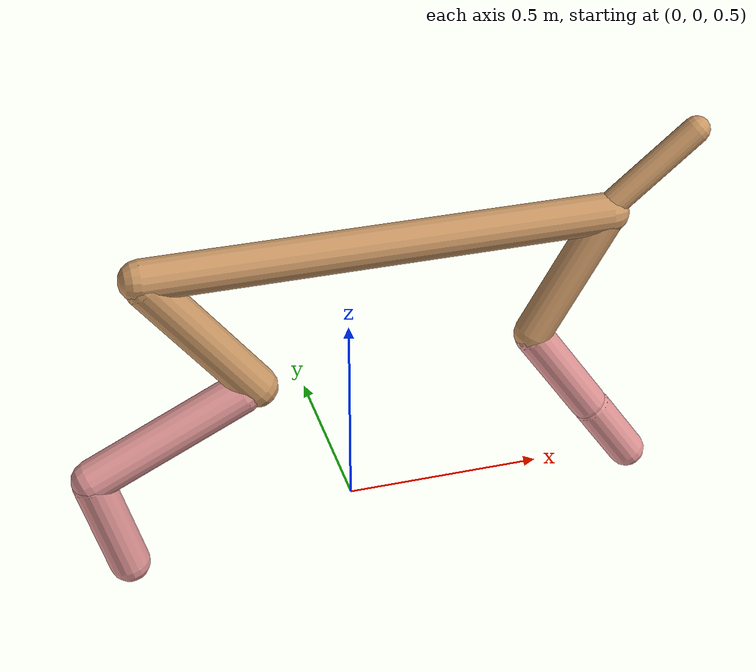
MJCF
<mujoco model="cheetah">
  <compiler angle="radian" coordinate="local" inertiafromgeom="true" settotalmass="14" />
  <default>
    <joint armature=".1" damping=".01" limited="true" solimplimit="0 .8 .03" solreflimit=".02 1" stiffness="8" />
    <geom conaffinity="0" condim="3" contype="1" friction="0.8 .1 .1" rgba="0.8 0.6 .4 1" solimp="0.0 0.8 0.01" solref="0.02 1" />
    <motor ctrllimited="true" ctrlrange="-1 1" />
  </default>
  <size nstack="300000" nuser_geom="1" />
  <option gravity="0 0 -9.81" timestep="0.01" />
  <worldbody>
    <body name="torso" pos="0.0 0.0 1.2181826105342155">
      <joint armature="0" axis="1 0 0" damping="0" limited="false" name="ignorex" pos="0 0 0" stiffness="0" type="slide" />
      <joint armature="0" axis="0 0 1" damping="0" limited="false" name="ignorez" pos="0 0 0" stiffness="0" type="slide" />
      <joint armature="0" axis="0 1 0" damping="0" limited="false" name="ignorey" pos="0 0 0" stiffness="0" type="hinge" />
      <geom fromto="-0.5 0.0 0.0 0.6610785848757871 0.0 0.0" name="torso" size="0.051049412654192355" type="capsule" />
      <geom axisangle="0 1 0 .87" name="head" pos="0.7610785848757872 0.0 0.1" size="0.0343625970420556 0.15" type="capsule" />

      <body name="bthigh" pos="-.5 0 0">
        <joint axis="0 1 0" damping="6" name="bthigh" pos="0 0 0" range="-.52 1.05" stiffness="240" type="hinge" />
        <geom axisangle="0 1 0 -3.8" name="bthigh" pos="0.13882332160215677 0.0 -0.18047031808280378" size="0.05260353222971386 0.20867498180293326" type="capsule" />
        <body name="bshin" pos="0.23764664320431353 0.0 -0.35094063616560756">
          <joint axis="0 1 0" damping="4.5" name="bshin" pos="0 0 0" range="-.785 .785" stiffness="180" type="hinge" />
          <geom axisangle="0 1 0 -2.03" name="bshin" pos="-0.1989165190803121 0.0 -0.09945825954015605" rgba="0.9 0.6 0.6 1" size="0.05260353222971386 0.21587067083062061" type="capsule" />
          <body name="bfoot" pos="-0.3978330381606242 0.0 -0.1989165190803121">
            <joint axis="0 1 0" damping="3" name="bfoot" pos="0 0 0" range="-.4 .785" stiffness="120" type="hinge" />
            <geom axisangle="0 1 0 -.27" name="bfoot" pos="0.042196681018315564 0.0 -0.13643593529255366" rgba="0.9 0.6 0.6 1" size="0.05260353222971386 0.13527895372052226" type="capsule" />
            <inertial mass="10" />
          </body>
        </body>
      </body>
      <body name="fthigh" pos="0.6610785848757872 0.0 0.0">
        <joint axis="0 1 0" damping="4.5" name="fthigh" pos="0 0 0" range="-1.5 0.8" stiffness="180" type="hinge" />
        <geom axisangle="0 1 0 .52" name="fthigh" pos="-0.09393869102324509 0.0 -0.1610377560398487" size="0.04783978475735482 0.18050956060302534" type="capsule" />
        <body name="fshin" pos="-0.18787738204649018 0.0 -0.3220755120796974">
          <joint axis="0 1 0" damping="3" name="fshin" pos="0 0 0" range="-1.2 1.1" stiffness="120" type="hinge" />
          <geom axisangle="0 1 0 -.6" name="fshin" pos="0.08716946081758604 0.0 -0.1206961765166576" rgba="0.9 0.6 0.6 1" size="0.04783978475735482 0.1438647625858698" type="capsule" />
          <body name="ffoot" pos="0.1743389216351721 0.0 -0.2413923530333152">
            <joint axis="0 1 0" damping="1.5" name="ffoot" pos="0 0 0" range="-3.1 -0.3" stiffness="60" type="hinge" />
            <geom axisangle="0 1 0 -.6" name="ffoot" pos="0.05852166081897613 0.0 -0.09103369460729621" rgba="0.9 0.6 0.6 1" size="0.04783978475735482 0.09500503189632913" type="capsule" />
            <inertial mass="10" />
          </body>
        </body>
      </body>
    </body>
  </worldbody>
  <actuator>
    <motor gear="120" joint="bthigh" name="bthigh" />
    <motor gear="90" joint="bshin" name="bshin" />
    <motor gear="60" joint="bfoot" name="bfoot" />
    <motor gear="120" joint="fthigh" name="fthigh" />
    <motor gear="60" joint="fshin" name="fshin" />
    <motor gear="30" joint="ffoot" name="ffoot" />
  </actuator>
</mujoco>
